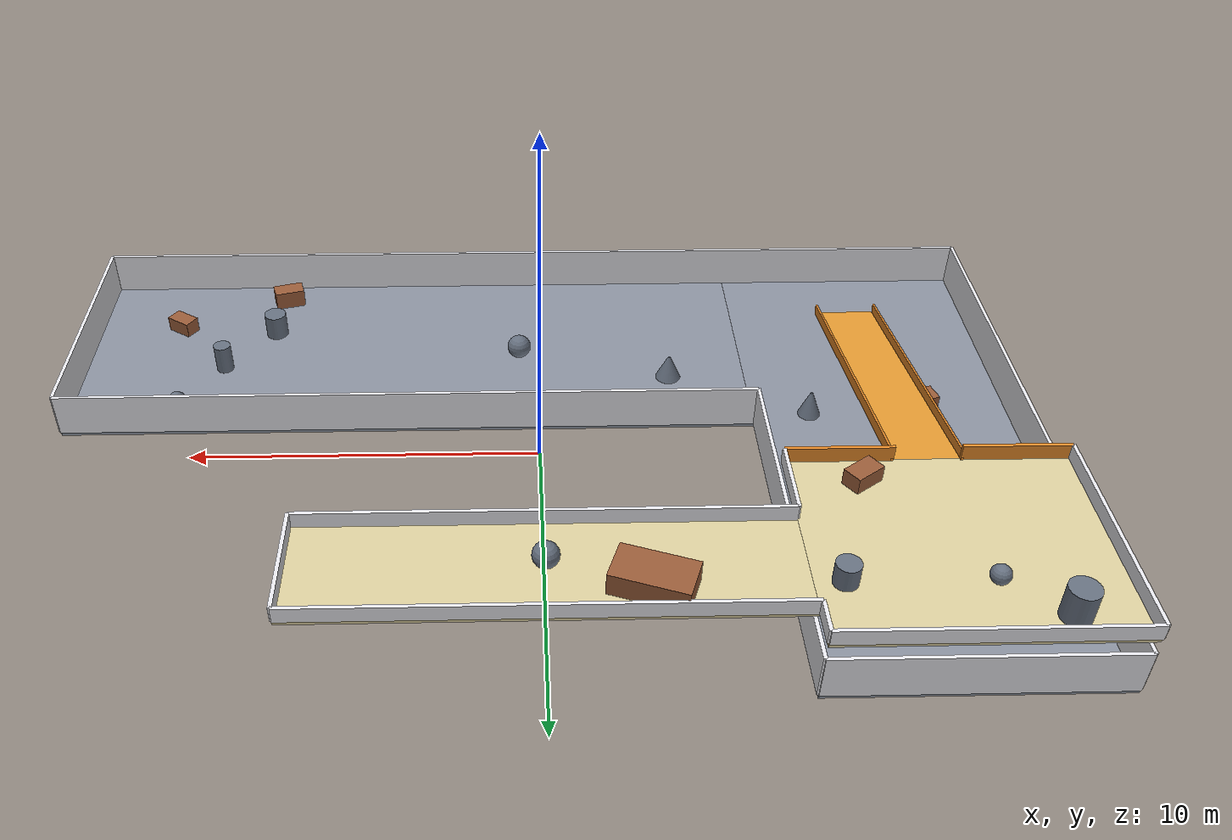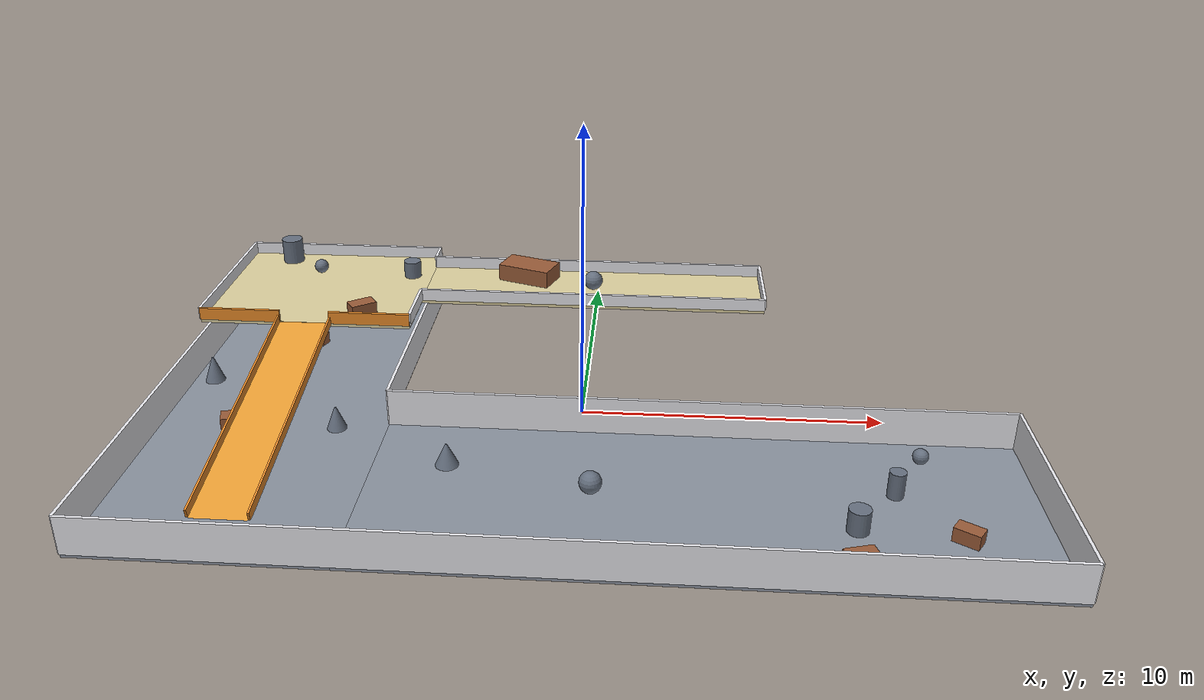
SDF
<?xml version='1.0' encoding='utf-8'?>
<sdf version="1.7">
  <world name="floor_4">
    <gravity>0 0 -9.8</gravity>
    <plugin name="gazebo_ros_state" filename="libgazebo_ros_state.so">
      <ros>
        <namespace>/gazebo</namespace>
      </ros>
    </plugin>
    <physics name="ode_physics" type="ode">
      <max_step_size>0.001</max_step_size>
      <real_time_factor>1</real_time_factor>
      <real_time_update_rate>1000</real_time_update_rate>
      <ode>
        <solver>
          <type>quick</type>
          <iters>150</iters>
          <sor>1.3</sor>
        </solver>
        <constraints>
          <cfm>0</cfm>
          <erp>0.2</erp>
          <contact_max_correcting_vel>0.2</contact_max_correcting_vel>
          <contact_surface_layer>0.001</contact_surface_layer>
        </constraints>
      </ode>
    </physics>
    <light name="sun" type="directional">
      <pose>0 0 28 0 0 0</pose>
      <diffuse>0.92 0.91 0.88 1</diffuse>
      <specular>0.18 0.18 0.16 1</specular>
      <direction>-0.35 -0.28 -0.9</direction>
      <cast_shadows>true</cast_shadows>
    </light>
    <light name="fill" type="point">
      <pose>0 0 4.5 0 0 0</pose>
      <diffuse>0.45 0.48 0.52 1</diffuse>
      <specular>0.02 0.02 0.02 1</specular>
      <cast_shadows>false</cast_shadows>
      <attenuation>
        <range>80</range>
        <constant>0.5</constant>
        <linear>0.02</linear>
      </attenuation>
    </light>
    <scene>
      <ambient>0.48 0.49 0.53 1</ambient>
      <background>0.72 0.77 0.84 1</background>
    </scene>
    <gui fullscreen="false">
      <camera name="user_camera">
        <pose>19.6 -16.0363636 23.8 0 0.65 2.2</pose>
        <view_controller>orbit</view_controller>
      </camera>
    </gui>
    <model name="floor_4_structure">
      <static>true</static>
      <link name="structure">
        <collision name="west_lower_collision">
          <pose>-10.1818182 0 -0.0636363636 0 0 0</pose>
          <geometry>
            <box>
              <size>7.63636364 17.8181818 0.127272727</size>
            </box>
          </geometry>
          <max_contacts>40</max_contacts>
          <surface>
            <friction>
              <ode>
                <mu>2</mu>
                <mu2>2</mu2>
              </ode>
            </friction>
            <contact>
              <ode>
                <kp>1e7</kp>
                <kd>1000</kd>
                <max_vel>0.1</max_vel>
                <min_depth>0.001</min_depth>
              </ode>
            </contact>
          </surface>
        </collision>
        <visual name="west_lower_visual">
          <pose>-10.1818182 0 -0.0636363636 0 0 0</pose>
          <geometry>
            <box>
              <size>7.63636364 17.8181818 0.127272727</size>
            </box>
          </geometry>
          <material>
            <ambient>0.54 0.57 0.62 1</ambient>
            <diffuse>0.54 0.57 0.62 1</diffuse>
          </material>
        </visual>
        <collision name="south_lower_collision">
          <pose>3.81818182 -5.09090909 -0.0636363636 0 0 0</pose>
          <geometry>
            <box>
              <size>20.3636364 7.63636364 0.127272727</size>
            </box>
          </geometry>
          <max_contacts>40</max_contacts>
          <surface>
            <friction>
              <ode>
                <mu>2</mu>
                <mu2>2</mu2>
              </ode>
            </friction>
            <contact>
              <ode>
                <kp>1e7</kp>
                <kd>1000</kd>
                <max_vel>0.1</max_vel>
                <min_depth>0.001</min_depth>
              </ode>
            </contact>
          </surface>
        </collision>
        <visual name="south_lower_visual">
          <pose>3.81818182 -5.09090909 -0.0636363636 0 0 0</pose>
          <geometry>
            <box>
              <size>20.3636364 7.63636364 0.127272727</size>
            </box>
          </geometry>
          <material>
            <ambient>0.54 0.57 0.62 1</ambient>
            <diffuse>0.54 0.57 0.62 1</diffuse>
          </material>
        </visual>
        <collision name="west_upper_collision">
          <pose>-10.1818182 5.72727273 1.71818182 0 0 0</pose>
          <geometry>
            <box>
              <size>7.63636364 6.36363636 0.127272727</size>
            </box>
          </geometry>
          <max_contacts>40</max_contacts>
          <surface>
            <friction>
              <ode>
                <mu>2</mu>
                <mu2>2</mu2>
              </ode>
            </friction>
            <contact>
              <ode>
                <kp>1e7</kp>
                <kd>1000</kd>
                <max_vel>0.1</max_vel>
                <min_depth>0.001</min_depth>
              </ode>
            </contact>
          </surface>
        </collision>
        <visual name="west_upper_visual">
          <pose>-10.1818182 5.72727273 1.71818182 0 0 0</pose>
          <geometry>
            <box>
              <size>7.63636364 6.36363636 0.127272727</size>
            </box>
          </geometry>
          <material>
            <ambient>0.86 0.81 0.62 1</ambient>
            <diffuse>0.86 0.81 0.62 1</diffuse>
          </material>
        </visual>
        <collision name="bridge_upper_collision">
          <pose>0 6.36363636 1.71818182 0 0 0</pose>
          <geometry>
            <box>
              <size>12.7272727 3.18181818 0.127272727</size>
            </box>
          </geometry>
          <max_contacts>40</max_contacts>
          <surface>
            <friction>
              <ode>
                <mu>2</mu>
                <mu2>2</mu2>
              </ode>
            </friction>
            <contact>
              <ode>
                <kp>1e7</kp>
                <kd>1000</kd>
                <max_vel>0.1</max_vel>
                <min_depth>0.001</min_depth>
              </ode>
            </contact>
          </surface>
        </collision>
        <visual name="bridge_upper_visual">
          <pose>0 6.36363636 1.71818182 0 0 0</pose>
          <geometry>
            <box>
              <size>12.7272727 3.18181818 0.127272727</size>
            </box>
          </geometry>
          <material>
            <ambient>0.86 0.81 0.62 1</ambient>
            <diffuse>0.86 0.81 0.62 1</diffuse>
          </material>
        </visual>
        <collision name="ramp_collision">
          <pose>-10.1818182 -2.200888 0.834602552 0 -0.183943457 1.57079633</pose>
          <geometry>
            <box>
              <size>9.74161326 1.8 0.114545455</size>
            </box>
          </geometry>
          <max_contacts>40</max_contacts>
          <surface>
            <friction>
              <ode>
                <mu>2</mu>
                <mu2>2</mu2>
              </ode>
            </friction>
            <contact>
              <ode>
                <kp>1e7</kp>
                <kd>1000</kd>
                <max_vel>0.1</max_vel>
                <min_depth>0.001</min_depth>
              </ode>
            </contact>
          </surface>
        </collision>
        <visual name="ramp_visual">
          <pose>-10.1818182 -2.200888 0.834602552 0 -0.183943457 1.57079633</pose>
          <geometry>
            <box>
              <size>9.74161326 1.8 0.114545455</size>
            </box>
          </geometry>
          <material>
            <ambient>0.92 0.62 0.20 1</ambient>
            <diffuse>0.92 0.62 0.20 1</diffuse>
          </material>
        </visual>
        <collision name="ramp_rail_-1_collision">
          <pose>-9.24363636 -2.200888 1.01278437 0 -0.183943457 1.57079633</pose>
          <geometry>
            <box>
              <size>9.74161326 0.0636363636 0.318181818</size>
            </box>
          </geometry>
          <max_contacts>40</max_contacts>
          <surface>
            <friction>
              <ode>
                <mu>2</mu>
                <mu2>2</mu2>
              </ode>
            </friction>
            <contact>
              <ode>
                <kp>1e7</kp>
                <kd>1000</kd>
                <max_vel>0.1</max_vel>
                <min_depth>0.001</min_depth>
              </ode>
            </contact>
          </surface>
        </collision>
        <visual name="ramp_rail_-1_visual">
          <pose>-9.24363636 -2.200888 1.01278437 0 -0.183943457 1.57079633</pose>
          <geometry>
            <box>
              <size>9.74161326 0.0636363636 0.318181818</size>
            </box>
          </geometry>
          <material>
            <ambient>0.92 0.55 0.16 1</ambient>
            <diffuse>0.92 0.55 0.16 1</diffuse>
          </material>
        </visual>
        <collision name="ramp_rail_1_collision">
          <pose>-11.12 -2.200888 1.01278437 0 -0.183943457 1.57079633</pose>
          <geometry>
            <box>
              <size>9.74161326 0.0636363636 0.318181818</size>
            </box>
          </geometry>
          <max_contacts>40</max_contacts>
          <surface>
            <friction>
              <ode>
                <mu>2</mu>
                <mu2>2</mu2>
              </ode>
            </friction>
            <contact>
              <ode>
                <kp>1e7</kp>
                <kd>1000</kd>
                <max_vel>0.1</max_vel>
                <min_depth>0.001</min_depth>
              </ode>
            </contact>
          </surface>
        </collision>
        <visual name="ramp_rail_1_visual">
          <pose>-11.12 -2.200888 1.01278437 0 -0.183943457 1.57079633</pose>
          <geometry>
            <box>
              <size>9.74161326 0.0636363636 0.318181818</size>
            </box>
          </geometry>
          <material>
            <ambient>0.92 0.55 0.16 1</ambient>
            <diffuse>0.92 0.55 0.16 1</diffuse>
          </material>
        </visual>
        <collision name="partial_corridor_block_collision">
          <pose>-2.54545455 7.06363636 2.1 0 0 -0.347542875</pose>
          <geometry>
            <box>
              <size>2.03636364 1.14545455 0.636363636</size>
            </box>
          </geometry>
          <max_contacts>40</max_contacts>
          <surface>
            <friction>
              <ode>
                <mu>2</mu>
                <mu2>2</mu2>
              </ode>
            </friction>
            <contact>
              <ode>
                <kp>1e7</kp>
                <kd>1000</kd>
                <max_vel>0.1</max_vel>
                <min_depth>0.001</min_depth>
              </ode>
            </contact>
          </surface>
        </collision>
        <visual name="partial_corridor_block_visual">
          <pose>-2.54545455 7.06363636 2.1 0 0 -0.347542875</pose>
          <geometry>
            <box>
              <size>2.03636364 1.14545455 0.636363636</size>
            </box>
          </geometry>
          <material>
            <ambient>0.60 0.36 0.22 1</ambient>
            <diffuse>0.60 0.36 0.22 1</diffuse>
          </material>
        </visual>
        <collision name="lower_crate_collision">
          <pose>-11.4545455 -1.90909091 0.254545455 0 0 0.275270172</pose>
          <geometry>
            <box>
              <size>0.763636364 0.572727273 0.509090909</size>
            </box>
          </geometry>
          <max_contacts>40</max_contacts>
          <surface>
            <friction>
              <ode>
                <mu>2</mu>
                <mu2>2</mu2>
              </ode>
            </friction>
            <contact>
              <ode>
                <kp>1e7</kp>
                <kd>1000</kd>
                <max_vel>0.1</max_vel>
                <min_depth>0.001</min_depth>
              </ode>
            </contact>
          </surface>
        </collision>
        <visual name="lower_crate_visual">
          <pose>-11.4545455 -1.90909091 0.254545455 0 0 0.275270172</pose>
          <geometry>
            <box>
              <size>0.763636364 0.572727273 0.509090909</size>
            </box>
          </geometry>
          <material>
            <ambient>0.60 0.36 0.22 1</ambient>
            <diffuse>0.60 0.36 0.22 1</diffuse>
          </material>
        </visual>
        <collision name="upper_rail_1_collision">
          <pose>-6.36363636 3.65909091 2.00454545 0 0 1.57079633</pose>
          <geometry>
            <box>
              <size>2.22727273 0.101818182 0.445454545</size>
            </box>
          </geometry>
          <max_contacts>40</max_contacts>
          <surface>
            <friction>
              <ode>
                <mu>2</mu>
                <mu2>2</mu2>
              </ode>
            </friction>
            <contact>
              <ode>
                <kp>1e7</kp>
                <kd>1000</kd>
                <max_vel>0.1</max_vel>
                <min_depth>0.001</min_depth>
              </ode>
            </contact>
          </surface>
        </collision>
        <visual name="upper_rail_1_visual">
          <pose>-6.36363636 3.65909091 2.00454545 0 0 1.57079633</pose>
          <geometry>
            <box>
              <size>2.22727273 0.101818182 0.445454545</size>
            </box>
          </geometry>
          <material>
            <ambient>0.91 0.91 0.93 1</ambient>
            <diffuse>0.91 0.91 0.93 1</diffuse>
          </material>
        </visual>
        <collision name="upper_rail_2_collision">
          <pose>0 4.77272727 2.00454545 0 0 0</pose>
          <geometry>
            <box>
              <size>12.7272727 0.101818182 0.445454545</size>
            </box>
          </geometry>
          <max_contacts>40</max_contacts>
          <surface>
            <friction>
              <ode>
                <mu>2</mu>
                <mu2>2</mu2>
              </ode>
            </friction>
            <contact>
              <ode>
                <kp>1e7</kp>
                <kd>1000</kd>
                <max_vel>0.1</max_vel>
                <min_depth>0.001</min_depth>
              </ode>
            </contact>
          </surface>
        </collision>
        <visual name="upper_rail_2_visual">
          <pose>0 4.77272727 2.00454545 0 0 0</pose>
          <geometry>
            <box>
              <size>12.7272727 0.101818182 0.445454545</size>
            </box>
          </geometry>
          <material>
            <ambient>0.91 0.91 0.93 1</ambient>
            <diffuse>0.91 0.91 0.93 1</diffuse>
          </material>
        </visual>
        <collision name="upper_rail_3_collision">
          <pose>6.36363636 6.36363636 2.00454545 0 0 1.57079633</pose>
          <geometry>
            <box>
              <size>3.18181818 0.101818182 0.445454545</size>
            </box>
          </geometry>
          <max_contacts>40</max_contacts>
          <surface>
            <friction>
              <ode>
                <mu>2</mu>
                <mu2>2</mu2>
              </ode>
            </friction>
            <contact>
              <ode>
                <kp>1e7</kp>
                <kd>1000</kd>
                <max_vel>0.1</max_vel>
                <min_depth>0.001</min_depth>
              </ode>
            </contact>
          </surface>
        </collision>
        <visual name="upper_rail_3_visual">
          <pose>6.36363636 6.36363636 2.00454545 0 0 1.57079633</pose>
          <geometry>
            <box>
              <size>3.18181818 0.101818182 0.445454545</size>
            </box>
          </geometry>
          <material>
            <ambient>0.91 0.91 0.93 1</ambient>
            <diffuse>0.91 0.91 0.93 1</diffuse>
          </material>
        </visual>
        <collision name="upper_rail_4_collision">
          <pose>0 7.95454545 2.00454545 0 0 3.14159265</pose>
          <geometry>
            <box>
              <size>12.7272727 0.101818182 0.445454545</size>
            </box>
          </geometry>
          <max_contacts>40</max_contacts>
          <surface>
            <friction>
              <ode>
                <mu>2</mu>
                <mu2>2</mu2>
              </ode>
            </friction>
            <contact>
              <ode>
                <kp>1e7</kp>
                <kd>1000</kd>
                <max_vel>0.1</max_vel>
                <min_depth>0.001</min_depth>
              </ode>
            </contact>
          </surface>
        </collision>
        <visual name="upper_rail_4_visual">
          <pose>0 7.95454545 2.00454545 0 0 3.14159265</pose>
          <geometry>
            <box>
              <size>12.7272727 0.101818182 0.445454545</size>
            </box>
          </geometry>
          <material>
            <ambient>0.91 0.91 0.93 1</ambient>
            <diffuse>0.91 0.91 0.93 1</diffuse>
          </material>
        </visual>
        <collision name="upper_rail_5_collision">
          <pose>-6.36363636 8.43181818 2.00454545 0 0 1.57079633</pose>
          <geometry>
            <box>
              <size>0.954545455 0.101818182 0.445454545</size>
            </box>
          </geometry>
          <max_contacts>40</max_contacts>
          <surface>
            <friction>
              <ode>
                <mu>2</mu>
                <mu2>2</mu2>
              </ode>
            </friction>
            <contact>
              <ode>
                <kp>1e7</kp>
                <kd>1000</kd>
                <max_vel>0.1</max_vel>
                <min_depth>0.001</min_depth>
              </ode>
            </contact>
          </surface>
        </collision>
        <visual name="upper_rail_5_visual">
          <pose>-6.36363636 8.43181818 2.00454545 0 0 1.57079633</pose>
          <geometry>
            <box>
              <size>0.954545455 0.101818182 0.445454545</size>
            </box>
          </geometry>
          <material>
            <ambient>0.91 0.91 0.93 1</ambient>
            <diffuse>0.91 0.91 0.93 1</diffuse>
          </material>
        </visual>
        <collision name="upper_rail_6_collision">
          <pose>-10.1818182 8.90909091 2.00454545 0 0 3.14159265</pose>
          <geometry>
            <box>
              <size>7.63636364 0.101818182 0.445454545</size>
            </box>
          </geometry>
          <max_contacts>40</max_contacts>
          <surface>
            <friction>
              <ode>
                <mu>2</mu>
                <mu2>2</mu2>
              </ode>
            </friction>
            <contact>
              <ode>
                <kp>1e7</kp>
                <kd>1000</kd>
                <max_vel>0.1</max_vel>
                <min_depth>0.001</min_depth>
              </ode>
            </contact>
          </surface>
        </collision>
        <visual name="upper_rail_6_visual">
          <pose>-10.1818182 8.90909091 2.00454545 0 0 3.14159265</pose>
          <geometry>
            <box>
              <size>7.63636364 0.101818182 0.445454545</size>
            </box>
          </geometry>
          <material>
            <ambient>0.91 0.91 0.93 1</ambient>
            <diffuse>0.91 0.91 0.93 1</diffuse>
          </material>
        </visual>
        <collision name="upper_rail_7_collision">
          <pose>-14 5.72727273 2.00454545 0 0 -1.57079633</pose>
          <geometry>
            <box>
              <size>6.36363636 0.101818182 0.445454545</size>
            </box>
          </geometry>
          <max_contacts>40</max_contacts>
          <surface>
            <friction>
              <ode>
                <mu>2</mu>
                <mu2>2</mu2>
              </ode>
            </friction>
            <contact>
              <ode>
                <kp>1e7</kp>
                <kd>1000</kd>
                <max_vel>0.1</max_vel>
                <min_depth>0.001</min_depth>
              </ode>
            </contact>
          </surface>
        </collision>
        <visual name="upper_rail_7_visual">
          <pose>-14 5.72727273 2.00454545 0 0 -1.57079633</pose>
          <geometry>
            <box>
              <size>6.36363636 0.101818182 0.445454545</size>
            </box>
          </geometry>
          <material>
            <ambient>0.91 0.91 0.93 1</ambient>
            <diffuse>0.91 0.91 0.93 1</diffuse>
          </material>
        </visual>
        <collision name="south_rail_left_collision">
          <pose>-12.5363636 2.54545455 2.00454545 0 0 0</pose>
          <geometry>
            <box>
              <size>2.92727273 0.101818182 0.445454545</size>
            </box>
          </geometry>
          <max_contacts>40</max_contacts>
          <surface>
            <friction>
              <ode>
                <mu>2</mu>
                <mu2>2</mu2>
              </ode>
            </friction>
            <contact>
              <ode>
                <kp>1e7</kp>
                <kd>1000</kd>
                <max_vel>0.1</max_vel>
                <min_depth>0.001</min_depth>
              </ode>
            </contact>
          </surface>
        </collision>
        <visual name="south_rail_left_visual">
          <pose>-12.5363636 2.54545455 2.00454545 0 0 0</pose>
          <geometry>
            <box>
              <size>2.92727273 0.101818182 0.445454545</size>
            </box>
          </geometry>
          <material>
            <ambient>0.92 0.55 0.16 1</ambient>
            <diffuse>0.92 0.55 0.16 1</diffuse>
          </material>
        </visual>
        <collision name="south_rail_right_collision">
          <pose>-7.82727273 2.54545455 2.00454545 0 0 0</pose>
          <geometry>
            <box>
              <size>2.92727273 0.101818182 0.445454545</size>
            </box>
          </geometry>
          <max_contacts>40</max_contacts>
          <surface>
            <friction>
              <ode>
                <mu>2</mu>
                <mu2>2</mu2>
              </ode>
            </friction>
            <contact>
              <ode>
                <kp>1e7</kp>
                <kd>1000</kd>
                <max_vel>0.1</max_vel>
                <min_depth>0.001</min_depth>
              </ode>
            </contact>
          </surface>
        </collision>
        <visual name="south_rail_right_visual">
          <pose>-7.82727273 2.54545455 2.00454545 0 0 0</pose>
          <geometry>
            <box>
              <size>2.92727273 0.101818182 0.445454545</size>
            </box>
          </geometry>
          <material>
            <ambient>0.92 0.55 0.16 1</ambient>
            <diffuse>0.92 0.55 0.16 1</diffuse>
          </material>
        </visual>
        <collision name="boundary_0_collision">
          <pose>0 -8.90909091 0.636363636 0 0 0</pose>
          <geometry>
            <box>
              <size>28 0.101818182 1.27272727</size>
            </box>
          </geometry>
          <max_contacts>40</max_contacts>
          <surface>
            <friction>
              <ode>
                <mu>2</mu>
                <mu2>2</mu2>
              </ode>
            </friction>
            <contact>
              <ode>
                <kp>1e7</kp>
                <kd>1000</kd>
                <max_vel>0.1</max_vel>
                <min_depth>0.001</min_depth>
              </ode>
            </contact>
          </surface>
        </collision>
        <visual name="boundary_0_visual">
          <pose>0 -8.90909091 0.636363636 0 0 0</pose>
          <geometry>
            <box>
              <size>28 0.101818182 1.27272727</size>
            </box>
          </geometry>
          <material>
            <ambient>0.91 0.91 0.93 1</ambient>
            <diffuse>0.91 0.91 0.93 1</diffuse>
          </material>
        </visual>
        <collision name="boundary_1_collision">
          <pose>14 -5.09090909 0.636363636 0 0 1.57079633</pose>
          <geometry>
            <box>
              <size>7.63636364 0.101818182 1.27272727</size>
            </box>
          </geometry>
          <max_contacts>40</max_contacts>
          <surface>
            <friction>
              <ode>
                <mu>2</mu>
                <mu2>2</mu2>
              </ode>
            </friction>
            <contact>
              <ode>
                <kp>1e7</kp>
                <kd>1000</kd>
                <max_vel>0.1</max_vel>
                <min_depth>0.001</min_depth>
              </ode>
            </contact>
          </surface>
        </collision>
        <visual name="boundary_1_visual">
          <pose>14 -5.09090909 0.636363636 0 0 1.57079633</pose>
          <geometry>
            <box>
              <size>7.63636364 0.101818182 1.27272727</size>
            </box>
          </geometry>
          <material>
            <ambient>0.91 0.91 0.93 1</ambient>
            <diffuse>0.91 0.91 0.93 1</diffuse>
          </material>
        </visual>
        <collision name="boundary_2_collision">
          <pose>3.81818182 -1.27272727 0.636363636 0 0 3.14159265</pose>
          <geometry>
            <box>
              <size>20.3636364 0.101818182 1.27272727</size>
            </box>
          </geometry>
          <max_contacts>40</max_contacts>
          <surface>
            <friction>
              <ode>
                <mu>2</mu>
                <mu2>2</mu2>
              </ode>
            </friction>
            <contact>
              <ode>
                <kp>1e7</kp>
                <kd>1000</kd>
                <max_vel>0.1</max_vel>
                <min_depth>0.001</min_depth>
              </ode>
            </contact>
          </surface>
        </collision>
        <visual name="boundary_2_visual">
          <pose>3.81818182 -1.27272727 0.636363636 0 0 3.14159265</pose>
          <geometry>
            <box>
              <size>20.3636364 0.101818182 1.27272727</size>
            </box>
          </geometry>
          <material>
            <ambient>0.91 0.91 0.93 1</ambient>
            <diffuse>0.91 0.91 0.93 1</diffuse>
          </material>
        </visual>
        <collision name="boundary_3_collision">
          <pose>-6.36363636 3.81818182 0.636363636 0 0 1.57079633</pose>
          <geometry>
            <box>
              <size>10.1818182 0.101818182 1.27272727</size>
            </box>
          </geometry>
          <max_contacts>40</max_contacts>
          <surface>
            <friction>
              <ode>
                <mu>2</mu>
                <mu2>2</mu2>
              </ode>
            </friction>
            <contact>
              <ode>
                <kp>1e7</kp>
                <kd>1000</kd>
                <max_vel>0.1</max_vel>
                <min_depth>0.001</min_depth>
              </ode>
            </contact>
          </surface>
        </collision>
        <visual name="boundary_3_visual">
          <pose>-6.36363636 3.81818182 0.636363636 0 0 1.57079633</pose>
          <geometry>
            <box>
              <size>10.1818182 0.101818182 1.27272727</size>
            </box>
          </geometry>
          <material>
            <ambient>0.91 0.91 0.93 1</ambient>
            <diffuse>0.91 0.91 0.93 1</diffuse>
          </material>
        </visual>
        <collision name="boundary_4_collision">
          <pose>-10.1818182 8.90909091 0.636363636 0 0 3.14159265</pose>
          <geometry>
            <box>
              <size>7.63636364 0.101818182 1.27272727</size>
            </box>
          </geometry>
          <max_contacts>40</max_contacts>
          <surface>
            <friction>
              <ode>
                <mu>2</mu>
                <mu2>2</mu2>
              </ode>
            </friction>
            <contact>
              <ode>
                <kp>1e7</kp>
                <kd>1000</kd>
                <max_vel>0.1</max_vel>
                <min_depth>0.001</min_depth>
              </ode>
            </contact>
          </surface>
        </collision>
        <visual name="boundary_4_visual">
          <pose>-10.1818182 8.90909091 0.636363636 0 0 3.14159265</pose>
          <geometry>
            <box>
              <size>7.63636364 0.101818182 1.27272727</size>
            </box>
          </geometry>
          <material>
            <ambient>0.91 0.91 0.93 1</ambient>
            <diffuse>0.91 0.91 0.93 1</diffuse>
          </material>
        </visual>
        <collision name="boundary_5_collision">
          <pose>-14 0 0.636363636 0 0 -1.57079633</pose>
          <geometry>
            <box>
              <size>17.8181818 0.101818182 1.27272727</size>
            </box>
          </geometry>
          <max_contacts>40</max_contacts>
          <surface>
            <friction>
              <ode>
                <mu>2</mu>
                <mu2>2</mu2>
              </ode>
            </friction>
            <contact>
              <ode>
                <kp>1e7</kp>
                <kd>1000</kd>
                <max_vel>0.1</max_vel>
                <min_depth>0.001</min_depth>
              </ode>
            </contact>
          </surface>
        </collision>
        <visual name="boundary_5_visual">
          <pose>-14 0 0.636363636 0 0 -1.57079633</pose>
          <geometry>
            <box>
              <size>17.8181818 0.101818182 1.27272727</size>
            </box>
          </geometry>
          <material>
            <ambient>0.91 0.91 0.93 1</ambient>
            <diffuse>0.91 0.91 0.93 1</diffuse>
          </material>
        </visual>
        <collision name="irregular_prop_0_collision">
          <pose>-10.5585911 4.54417481 0.42866322 0 0 -0.336567468</pose>
          <geometry>
            <box>
              <size>1.12551111 0.40377719 0.857326439</size>
            </box>
          </geometry>
          <max_contacts>40</max_contacts>
          <surface>
            <friction>
              <ode>
                <mu>2</mu>
                <mu2>2</mu2>
              </ode>
            </friction>
            <contact>
              <ode>
                <kp>1e7</kp>
                <kd>1000</kd>
                <max_vel>0.1</max_vel>
                <min_depth>0.001</min_depth>
              </ode>
            </contact>
          </surface>
        </collision>
        <visual name="irregular_prop_0_visual">
          <pose>-10.5585911 4.54417481 0.42866322 0 0 -0.336567468</pose>
          <geometry>
            <box>
              <size>1.12551111 0.40377719 0.857326439</size>
            </box>
          </geometry>
          <material>
            <ambient>0.60 0.36 0.22 1</ambient>
            <diffuse>0.60 0.36 0.22 1</diffuse>
          </material>
        </visual>
        <collision name="irregular_prop_1_collision">
          <pose>9.69056873 -4.31280117 0.436211353 0 0 -1.11580596</pose>
          <geometry>
            <cylinder>
              <radius>0.2558053135998679</radius>
              <length>0.8724227055542353</length>
            </cylinder>
          </geometry>
          <max_contacts>40</max_contacts>
          <surface>
            <friction>
              <ode>
                <mu>2</mu>
                <mu2>2</mu2>
              </ode>
            </friction>
            <contact>
              <ode>
                <kp>1e7</kp>
                <kd>1000</kd>
                <max_vel>0.1</max_vel>
                <min_depth>0.001</min_depth>
              </ode>
            </contact>
          </surface>
        </collision>
        <visual name="irregular_prop_1_visual">
          <pose>9.69056873 -4.31280117 0.436211353 0 0 -1.11580596</pose>
          <geometry>
            <cylinder>
              <radius>0.2558053135998679</radius>
              <length>0.8724227055542353</length>
            </cylinder>
          </geometry>
          <material>
            <ambient>0.40 0.44 0.50 1</ambient>
            <diffuse>0.40 0.44 0.50 1</diffuse>
          </material>
        </visual>
        <collision name="irregular_prop_2_collision">
          <pose>-10.7755165 7.07277893 2.04601534 0 0 -0.0183313266</pose>
          <geometry>
            <sphere>
              <radius>0.26419716128093956</radius>
            </sphere>
          </geometry>
          <max_contacts>40</max_contacts>
          <surface>
            <friction>
              <ode>
                <mu>2</mu>
                <mu2>2</mu2>
              </ode>
            </friction>
            <contact>
              <ode>
                <kp>1e7</kp>
                <kd>1000</kd>
                <max_vel>0.1</max_vel>
                <min_depth>0.001</min_depth>
              </ode>
            </contact>
          </surface>
        </collision>
        <visual name="irregular_prop_2_visual">
          <pose>-10.7755165 7.07277893 2.04601534 0 0 -0.0183313266</pose>
          <geometry>
            <sphere>
              <radius>0.26419716128093956</radius>
            </sphere>
          </geometry>
          <material>
            <ambient>0.40 0.44 0.50 1</ambient>
            <diffuse>0.40 0.44 0.50 1</diffuse>
          </material>
        </visual>
        <collision name="irregular_prop_3_collision">
          <pose>0 0 0 0 0 0</pose>
          <geometry>
            <mesh>
              <uri>3DModel/floor/surfaces/floor_4_irregular_prop_3.stl</uri>
            </mesh>
          </geometry>
          <max_contacts>40</max_contacts>
          <surface>
            <friction>
              <ode>
                <mu>8</mu>
                <mu2>8</mu2>
              </ode>
            </friction>
            <contact>
              <ode>
                <kp>1e7</kp>
                <kd>1000</kd>
                <max_vel>0.1</max_vel>
                <min_depth>0.001</min_depth>
              </ode>
            </contact>
          </surface>
        </collision>
        <visual name="irregular_prop_3_visual">
          <pose>0 0 0 0 0 0</pose>
          <geometry>
            <mesh>
              <uri>3DModel/floor/surfaces/floor_4_irregular_prop_3.stl</uri>
            </mesh>
          </geometry>
          <material>
            <ambient>0.40 0.44 0.50 1</ambient>
            <diffuse>0.40 0.44 0.50 1</diffuse>
          </material>
        </visual>
        <collision name="irregular_prop_4_collision">
          <pose>8.12983558 -7.92410732 0.283233993 0 0 0.278938682</pose>
          <geometry>
            <box>
              <size>0.923536329 0.528099612 0.566467986</size>
            </box>
          </geometry>
          <max_contacts>40</max_contacts>
          <surface>
            <friction>
              <ode>
                <mu>2</mu>
                <mu2>2</mu2>
              </ode>
            </friction>
            <contact>
              <ode>
                <kp>1e7</kp>
                <kd>1000</kd>
                <max_vel>0.1</max_vel>
                <min_depth>0.001</min_depth>
              </ode>
            </contact>
          </surface>
        </collision>
        <visual name="irregular_prop_4_visual">
          <pose>8.12983558 -7.92410732 0.283233993 0 0 0.278938682</pose>
          <geometry>
            <box>
              <size>0.923536329 0.528099612 0.566467986</size>
            </box>
          </geometry>
          <material>
            <ambient>0.60 0.36 0.22 1</ambient>
            <diffuse>0.60 0.36 0.22 1</diffuse>
          </material>
        </visual>
        <collision name="irregular_prop_5_collision">
          <pose>-7.12599605 6.99487172 2.10087752 0 0 -1.96106051</pose>
          <geometry>
            <cylinder>
              <radius>0.324085885713421</radius>
              <length>0.6381186738666622</length>
            </cylinder>
          </geometry>
          <max_contacts>40</max_contacts>
          <surface>
            <friction>
              <ode>
                <mu>2</mu>
                <mu2>2</mu2>
              </ode>
            </friction>
            <contact>
              <ode>
                <kp>1e7</kp>
                <kd>1000</kd>
                <max_vel>0.1</max_vel>
                <min_depth>0.001</min_depth>
              </ode>
            </contact>
          </surface>
        </collision>
        <visual name="irregular_prop_5_visual">
          <pose>-7.12599605 6.99487172 2.10087752 0 0 -1.96106051</pose>
          <geometry>
            <cylinder>
              <radius>0.324085885713421</radius>
              <length>0.6381186738666622</length>
            </cylinder>
          </geometry>
          <material>
            <ambient>0.40 0.44 0.50 1</ambient>
            <diffuse>0.40 0.44 0.50 1</diffuse>
          </material>
        </visual>
        <collision name="irregular_prop_6_collision">
          <pose>0.548868902 -4.7909251 0.357281209 0 0 0.104612853</pose>
          <geometry>
            <sphere>
              <radius>0.35728120893592086</radius>
            </sphere>
          </geometry>
          <max_contacts>40</max_contacts>
          <surface>
            <friction>
              <ode>
                <mu>2</mu>
                <mu2>2</mu2>
              </ode>
            </friction>
            <contact>
              <ode>
                <kp>1e7</kp>
                <kd>1000</kd>
                <max_vel>0.1</max_vel>
                <min_depth>0.001</min_depth>
              </ode>
            </contact>
          </surface>
        </collision>
        <visual name="irregular_prop_6_visual">
          <pose>0.548868902 -4.7909251 0.357281209 0 0 0.104612853</pose>
          <geometry>
            <sphere>
              <radius>0.35728120893592086</radius>
            </sphere>
          </geometry>
          <material>
            <ambient>0.40 0.44 0.50 1</ambient>
            <diffuse>0.40 0.44 0.50 1</diffuse>
          </material>
        </visual>
        <collision name="irregular_prop_7_collision">
          <pose>0 0 0 0 0 0</pose>
          <geometry>
            <mesh>
              <uri>3DModel/floor/surfaces/floor_4_irregular_prop_7.stl</uri>
            </mesh>
          </geometry>
          <max_contacts>40</max_contacts>
          <surface>
            <friction>
              <ode>
                <mu>8</mu>
                <mu2>8</mu2>
              </ode>
            </friction>
            <contact>
              <ode>
                <kp>1e7</kp>
                <kd>1000</kd>
                <max_vel>0.1</max_vel>
                <min_depth>0.001</min_depth>
              </ode>
            </contact>
          </surface>
        </collision>
        <visual name="irregular_prop_7_visual">
          <pose>0 0 0 0 0 0</pose>
          <geometry>
            <mesh>
              <uri>3DModel/floor/surfaces/floor_4_irregular_prop_7.stl</uri>
            </mesh>
          </geometry>
          <material>
            <ambient>0.40 0.44 0.50 1</ambient>
            <diffuse>0.40 0.44 0.50 1</diffuse>
          </material>
        </visual>
        <collision name="irregular_prop_8_collision">
          <pose>-8.27844669 3.4106145 2.0188695 0 0 0.620734267</pose>
          <geometry>
            <box>
              <size>0.926380417 0.555742047 0.474102627</size>
            </box>
          </geometry>
          <max_contacts>40</max_contacts>
          <surface>
            <friction>
              <ode>
                <mu>2</mu>
                <mu2>2</mu2>
              </ode>
            </friction>
            <contact>
              <ode>
                <kp>1e7</kp>
                <kd>1000</kd>
                <max_vel>0.1</max_vel>
                <min_depth>0.001</min_depth>
              </ode>
            </contact>
          </surface>
        </collision>
        <visual name="irregular_prop_8_visual">
          <pose>-8.27844669 3.4106145 2.0188695 0 0 0.620734267</pose>
          <geometry>
            <box>
              <size>0.926380417 0.555742047 0.474102627</size>
            </box>
          </geometry>
          <material>
            <ambient>0.60 0.36 0.22 1</ambient>
            <diffuse>0.60 0.36 0.22 1</diffuse>
          </material>
        </visual>
        <collision name="irregular_prop_9_collision">
          <pose>8.31687201 -6.16247458 0.381642341 0 0 -1.87516974</pose>
          <geometry>
            <cylinder>
              <radius>0.3337138159491635</radius>
              <length>0.763284681469732</length>
            </cylinder>
          </geometry>
          <max_contacts>40</max_contacts>
          <surface>
            <friction>
              <ode>
                <mu>2</mu>
                <mu2>2</mu2>
              </ode>
            </friction>
            <contact>
              <ode>
                <kp>1e7</kp>
                <kd>1000</kd>
                <max_vel>0.1</max_vel>
                <min_depth>0.001</min_depth>
              </ode>
            </contact>
          </surface>
        </collision>
        <visual name="irregular_prop_9_visual">
          <pose>8.31687201 -6.16247458 0.381642341 0 0 -1.87516974</pose>
          <geometry>
            <cylinder>
              <radius>0.3337138159491635</radius>
              <length>0.763284681469732</length>
            </cylinder>
          </geometry>
          <material>
            <ambient>0.40 0.44 0.50 1</ambient>
            <diffuse>0.40 0.44 0.50 1</diffuse>
          </material>
        </visual>
        <collision name="irregular_prop_10_collision">
          <pose>-0.0110207584 6.27306519 2.13224856 0 0 0.968181528</pose>
          <geometry>
            <sphere>
              <radius>0.3504303738789686</radius>
            </sphere>
          </geometry>
          <max_contacts>40</max_contacts>
          <surface>
            <friction>
              <ode>
                <mu>2</mu>
                <mu2>2</mu2>
              </ode>
            </friction>
            <contact>
              <ode>
                <kp>1e7</kp>
                <kd>1000</kd>
                <max_vel>0.1</max_vel>
                <min_depth>0.001</min_depth>
              </ode>
            </contact>
          </surface>
        </collision>
        <visual name="irregular_prop_10_visual">
          <pose>-0.0110207584 6.27306519 2.13224856 0 0 0.968181528</pose>
          <geometry>
            <sphere>
              <radius>0.3504303738789686</radius>
            </sphere>
          </geometry>
          <material>
            <ambient>0.40 0.44 0.50 1</ambient>
            <diffuse>0.40 0.44 0.50 1</diffuse>
          </material>
        </visual>
        <collision name="irregular_prop_11_collision">
          <pose>0 0 0 0 0 0</pose>
          <geometry>
            <mesh>
              <uri>3DModel/floor/surfaces/floor_4_irregular_prop_11.stl</uri>
            </mesh>
          </geometry>
          <max_contacts>40</max_contacts>
          <surface>
            <friction>
              <ode>
                <mu>8</mu>
                <mu2>8</mu2>
              </ode>
            </friction>
            <contact>
              <ode>
                <kp>1e7</kp>
                <kd>1000</kd>
                <max_vel>0.1</max_vel>
                <min_depth>0.001</min_depth>
              </ode>
            </contact>
          </surface>
        </collision>
        <visual name="irregular_prop_11_visual">
          <pose>0 0 0 0 0 0</pose>
          <geometry>
            <mesh>
              <uri>3DModel/floor/surfaces/floor_4_irregular_prop_11.stl</uri>
            </mesh>
          </geometry>
          <material>
            <ambient>0.40 0.44 0.50 1</ambient>
            <diffuse>0.40 0.44 0.50 1</diffuse>
          </material>
        </visual>
        <collision name="irregular_prop_12_collision">
          <pose>11.3529835 -6.44947791 0.230686705 0 0 -0.583899647</pose>
          <geometry>
            <box>
              <size>0.803718044 0.487500903 0.46137341</size>
            </box>
          </geometry>
          <max_contacts>40</max_contacts>
          <surface>
            <friction>
              <ode>
                <mu>2</mu>
                <mu2>2</mu2>
              </ode>
            </friction>
            <contact>
              <ode>
                <kp>1e7</kp>
                <kd>1000</kd>
                <max_vel>0.1</max_vel>
                <min_depth>0.001</min_depth>
              </ode>
            </contact>
          </surface>
        </collision>
        <visual name="irregular_prop_12_visual">
          <pose>11.3529835 -6.44947791 0.230686705 0 0 -0.583899647</pose>
          <geometry>
            <box>
              <size>0.803718044 0.487500903 0.46137341</size>
            </box>
          </geometry>
          <material>
            <ambient>0.60 0.36 0.22 1</ambient>
            <diffuse>0.60 0.36 0.22 1</diffuse>
          </material>
        </visual>
        <collision name="irregular_prop_13_collision">
          <pose>-12.2324096 8.19592715 2.2493546 0 0 2.93839576</pose>
          <geometry>
            <cylinder>
              <radius>0.3971335254027002</radius>
              <length>0.9350728367082478</length>
            </cylinder>
          </geometry>
          <max_contacts>40</max_contacts>
          <surface>
            <friction>
              <ode>
                <mu>2</mu>
                <mu2>2</mu2>
              </ode>
            </friction>
            <contact>
              <ode>
                <kp>1e7</kp>
                <kd>1000</kd>
                <max_vel>0.1</max_vel>
                <min_depth>0.001</min_depth>
              </ode>
            </contact>
          </surface>
        </collision>
        <visual name="irregular_prop_13_visual">
          <pose>-12.2324096 8.19592715 2.2493546 0 0 2.93839576</pose>
          <geometry>
            <cylinder>
              <radius>0.3971335254027002</radius>
              <length>0.9350728367082478</length>
            </cylinder>
          </geometry>
          <material>
            <ambient>0.40 0.44 0.50 1</ambient>
            <diffuse>0.40 0.44 0.50 1</diffuse>
          </material>
        </visual>
        <collision name="irregular_prop_14_collision">
          <pose>10.7862277 -2.41621644 0.254817222 0 0 2.58199548</pose>
          <geometry>
            <sphere>
              <radius>0.25481722186351013</radius>
            </sphere>
          </geometry>
          <max_contacts>40</max_contacts>
          <surface>
            <friction>
              <ode>
                <mu>2</mu>
                <mu2>2</mu2>
              </ode>
            </friction>
            <contact>
              <ode>
                <kp>1e7</kp>
                <kd>1000</kd>
                <max_vel>0.1</max_vel>
                <min_depth>0.001</min_depth>
              </ode>
            </contact>
          </surface>
        </collision>
        <visual name="irregular_prop_14_visual">
          <pose>10.7862277 -2.41621644 0.254817222 0 0 2.58199548</pose>
          <geometry>
            <sphere>
              <radius>0.25481722186351013</radius>
            </sphere>
          </geometry>
          <material>
            <ambient>0.40 0.44 0.50 1</ambient>
            <diffuse>0.40 0.44 0.50 1</diffuse>
          </material>
        </visual>
      </link>
    </model>
  </world>
</sdf>
